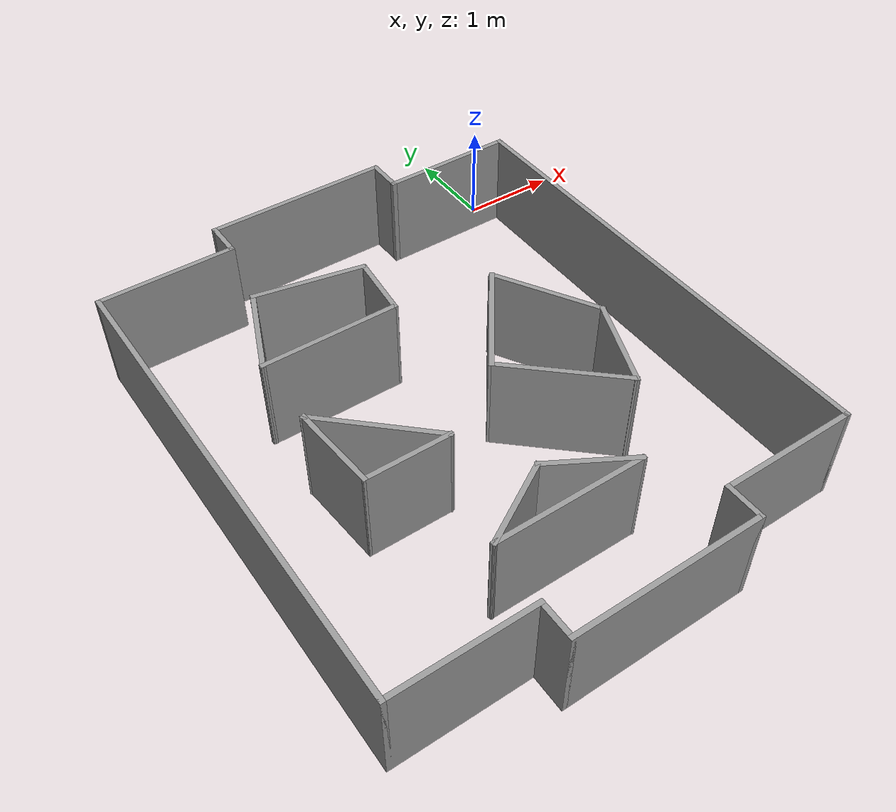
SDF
<?xml version='1.0'?>
<sdf version='1.6'>
  <model name='rgarena2-4'>
    <pose frame=''>-2.116 -2.655 0 0 -0 0</pose>
    <link name='Wall_0'>
      <collision name='Wall_0_Collision'>
        <geometry>
          <box>
            <size>4.9 0.05 1</size>
          </box>
        </geometry>
        <pose frame=''>0 0 0.5 0 -0 0</pose>
      </collision>
      <visual name='Wall_0_Visual'>
        <pose frame=''>0 0 0.5 0 -0 0</pose>
        <geometry>
          <box>
            <size>4.9 0.05 1</size>
          </box>
        </geometry>
        <material>
          <script>
            <uri>file://media/materials/scripts/gazebo.material</uri>
            <name>Gazebo/Grey</name>
          </script>
          <ambient>1 1 1 1</ambient>
        </material>
        <meta>
          <layer>0</layer>
        </meta>
      </visual>
      <pose frame=''>-2.275 -0 0 0 -0 -1.5708</pose>
    </link>
    <link name='Wall_1'>
      <collision name='Wall_1_Collision'>
        <geometry>
          <box>
            <size>1.4 0.05 1</size>
          </box>
        </geometry>
        <pose frame=''>0 0 0.5 0 -0 0</pose>
      </collision>
      <visual name='Wall_1_Visual'>
        <pose frame=''>0 0 0.5 0 -0 0</pose>
        <geometry>
          <box>
            <size>1.4 0.05 1</size>
          </box>
        </geometry>
        <material>
          <script>
            <uri>file://media/materials/scripts/gazebo.material</uri>
            <name>Gazebo/Grey</name>
          </script>
          <ambient>1 1 1 1</ambient>
        </material>
        <meta>
          <layer>0</layer>
        </meta>
      </visual>
      <pose frame=''>-1.6 -2.425 0 0 -0 0</pose>
    </link>
    <link name='Wall_13'>
      <collision name='Wall_13_Collision'>
        <geometry>
          <box>
            <size>1.9 0.05 1</size>
          </box>
        </geometry>
        <pose frame=''>0 0 0.5 0 -0 0</pose>
      </collision>
      <visual name='Wall_13_Visual'>
        <pose frame=''>0 0 0.5 0 -0 0</pose>
        <geometry>
          <box>
            <size>1.9 0.05 1</size>
          </box>
        </geometry>
        <material>
          <script>
            <uri>file://media/materials/scripts/gazebo.material</uri>
            <name>Gazebo/Grey</name>
          </script>
          <ambient>1 1 1 1</ambient>
        </material>
        <meta>
          <layer>0</layer>
        </meta>
      </visual>
      <pose frame=''>-0 2.775 0 0 -0 3.14159</pose>
    </link>
    <link name='Wall_14'>
      <collision name='Wall_14_Collision'>
        <geometry>
          <box>
            <size>0.4 0.05 1</size>
          </box>
        </geometry>
        <pose frame=''>0 0 0.5 0 -0 0</pose>
      </collision>
      <visual name='Wall_14_Visual'>
        <pose frame=''>0 0 0.5 0 -0 0</pose>
        <geometry>
          <box>
            <size>0.4 0.05 1</size>
          </box>
        </geometry>
        <material>
          <script>
            <uri>file://media/materials/scripts/gazebo.material</uri>
            <name>Gazebo/Grey</name>
          </script>
          <ambient>1 1 1 1</ambient>
        </material>
        <meta>
          <layer>0</layer>
        </meta>
      </visual>
      <pose frame=''>-0.925 2.6 0 0 -0 -1.5708</pose>
    </link>
    <link name='Wall_15'>
      <collision name='Wall_15_Collision'>
        <geometry>
          <box>
            <size>1.4 0.05 1</size>
          </box>
        </geometry>
        <pose frame=''>0 0 0.5 0 -0 0</pose>
      </collision>
      <visual name='Wall_15_Visual'>
        <pose frame=''>0 0 0.5 0 -0 0</pose>
        <geometry>
          <box>
            <size>1.4 0.05 1</size>
          </box>
        </geometry>
        <material>
          <script>
            <uri>file://media/materials/scripts/gazebo.material</uri>
            <name>Gazebo/Grey</name>
          </script>
          <ambient>1 1 1 1</ambient>
        </material>
        <meta>
          <layer>0</layer>
        </meta>
      </visual>
      <pose frame=''>-1.6 2.425 0 0 -0 3.14159</pose>
    </link>
    <link name='Wall_2'>
      <collision name='Wall_2_Collision'>
        <geometry>
          <box>
            <size>0.4 0.05 1</size>
          </box>
        </geometry>
        <pose frame=''>0 0 0.5 0 -0 0</pose>
      </collision>
      <visual name='Wall_2_Visual'>
        <pose frame=''>0 0 0.5 0 -0 0</pose>
        <geometry>
          <box>
            <size>0.4 0.05 1</size>
          </box>
        </geometry>
        <material>
          <script>
            <uri>file://media/materials/scripts/gazebo.material</uri>
            <name>Gazebo/Grey</name>
          </script>
          <ambient>1 1 1 1</ambient>
        </material>
        <meta>
          <layer>0</layer>
        </meta>
      </visual>
      <pose frame=''>-0.925 -2.6 0 0 -0 -1.5708</pose>
    </link>
    <link name='Wall_3'>
      <collision name='Wall_3_Collision'>
        <geometry>
          <box>
            <size>1.9 0.05 1</size>
          </box>
        </geometry>
        <pose frame=''>0 0 0.5 0 -0 0</pose>
      </collision>
      <visual name='Wall_3_Visual'>
        <pose frame=''>0 0 0.5 0 -0 0</pose>
        <geometry>
          <box>
            <size>1.9 0.05 1</size>
          </box>
        </geometry>
        <material>
          <script>
            <uri>file://media/materials/scripts/gazebo.material</uri>
            <name>Gazebo/Grey</name>
          </script>
          <ambient>1 1 1 1</ambient>
        </material>
        <meta>
          <layer>0</layer>
        </meta>
      </visual>
      <pose frame=''>-0 -2.775 0 0 -0 0</pose>
    </link>
    <link name='Wall_4'>
      <collision name='Wall_4_Collision'>
        <geometry>
          <box>
            <size>0.4 0.05 1</size>
          </box>
        </geometry>
        <pose frame=''>0 0 0.5 0 -0 0</pose>
      </collision>
      <visual name='Wall_4_Visual'>
        <pose frame=''>0 0 0.5 0 -0 0</pose>
        <geometry>
          <box>
            <size>0.4 0.05 1</size>
          </box>
        </geometry>
        <material>
          <script>
            <uri>file://media/materials/scripts/gazebo.material</uri>
            <name>Gazebo/Grey</name>
          </script>
          <ambient>1 1 1 1</ambient>
        </material>
        <meta>
          <layer>0</layer>
        </meta>
      </visual>
      <pose frame=''>0.925 -2.6 0 0 -0 1.5708</pose>
    </link>
    <link name='Wall_48'>
      <collision name='Wall_48_Collision'>
        <geometry>
          <box>
            <size>0.90255 0.05 1</size>
          </box>
        </geometry>
        <pose frame=''>0 0 0.5 0 -0 0</pose>
      </collision>
      <visual name='Wall_48_Visual'>
        <pose frame=''>0 0 0.5 0 -0 0</pose>
        <geometry>
          <box>
            <size>0.90255 0.05 1</size>
          </box>
        </geometry>
        <material>
          <script>
            <uri>file://media/materials/scripts/gazebo.material</uri>
            <name>Gazebo/Grey</name>
          </script>
          <ambient>1 1 1 1</ambient>
        </material>
        <meta>
          <layer>0</layer>
        </meta>
      </visual>
      <pose frame=''>-1.404 -0.311 0 0 -0 -1.49331</pose>
    </link>
    <link name='Wall_49'>
      <collision name='Wall_49_Collision'>
        <geometry>
          <box>
            <size>0.874 0.05 1</size>
          </box>
        </geometry>
        <pose frame=''>0 0 0.5 0 -0 0</pose>
      </collision>
      <visual name='Wall_49_Visual'>
        <pose frame=''>0 0 0.5 0 -0 0</pose>
        <geometry>
          <box>
            <size>0.874 0.05 1</size>
          </box>
        </geometry>
        <material>
          <script>
            <uri>file://media/materials/scripts/gazebo.material</uri>
            <name>Gazebo/Grey</name>
          </script>
          <ambient>1 1 1 1</ambient>
        </material>
        <meta>
          <layer>0</layer>
        </meta>
      </visual>
      <pose frame=''>-0.959 -0.736 0 0 -0 0</pose>
    </link>
    <link name='Wall_5'>
      <collision name='Wall_5_Collision'>
        <geometry>
          <box>
            <size>1.4 0.05 1</size>
          </box>
        </geometry>
        <pose frame=''>0 0 0.5 0 -0 0</pose>
      </collision>
      <visual name='Wall_5_Visual'>
        <pose frame=''>0 0 0.5 0 -0 0</pose>
        <geometry>
          <box>
            <size>1.4 0.05 1</size>
          </box>
        </geometry>
        <material>
          <script>
            <uri>file://media/materials/scripts/gazebo.material</uri>
            <name>Gazebo/Grey</name>
          </script>
          <ambient>1 1 1 1</ambient>
        </material>
        <meta>
          <layer>0</layer>
        </meta>
      </visual>
      <pose frame=''>1.6 -2.425 0 0 -0 0</pose>
    </link>
    <link name='Wall_50'>
      <collision name='Wall_50_Collision'>
        <geometry>
          <box>
            <size>1.28082 0.05 1</size>
          </box>
        </geometry>
        <pose frame=''>0 0 0.5 0 -0 0</pose>
      </collision>
      <visual name='Wall_50_Visual'>
        <pose frame=''>0 0 0.5 0 -0 0</pose>
        <geometry>
          <box>
            <size>1.28082 0.05 1</size>
          </box>
        </geometry>
        <material>
          <script>
            <uri>file://media/materials/scripts/gazebo.material</uri>
            <name>Gazebo/Grey</name>
          </script>
          <ambient>1 1 1 1</ambient>
        </material>
        <meta>
          <layer>0</layer>
        </meta>
      </visual>
      <pose frame=''>-0.992 -0.311 0 0 -0 2.37918</pose>
    </link>
    <link name='Wall_52'>
      <collision name='Wall_52_Collision'>
        <geometry>
          <box>
            <size>1.23594 0.05 1</size>
          </box>
        </geometry>
        <pose frame=''>0 0 0.5 0 -0 0</pose>
      </collision>
      <visual name='Wall_52_Visual'>
        <pose frame=''>0 0 0.5 0 -0 0</pose>
        <geometry>
          <box>
            <size>1.23594 0.05 1</size>
          </box>
        </geometry>
        <material>
          <script>
            <uri>file://media/materials/scripts/gazebo.material</uri>
            <name>Gazebo/Grey</name>
          </script>
          <ambient>1 1 1 1</ambient>
        </material>
        <meta>
          <layer>0</layer>
        </meta>
      </visual>
      <pose frame=''>0.5545 0.2075 0 0 -0 0.936234</pose>
    </link>
    <link name='Wall_53'>
      <collision name='Wall_53_Collision'>
        <geometry>
          <box>
            <size>1.14996 0.05 1</size>
          </box>
        </geometry>
        <pose frame=''>0 0 0.5 0 -0 0</pose>
      </collision>
      <visual name='Wall_53_Visual'>
        <pose frame=''>0 0 0.5 0 -0 0</pose>
        <geometry>
          <box>
            <size>1.14996 0.05 1</size>
          </box>
        </geometry>
        <material>
          <script>
            <uri>file://media/materials/scripts/gazebo.material</uri>
            <name>Gazebo/Grey</name>
          </script>
          <ambient>1 1 1 1</ambient>
        </material>
        <meta>
          <layer>0</layer>
        </meta>
      </visual>
      <pose frame=''>1.181 0.2085 0 0 -0 -1.04737</pose>
    </link>
    <link name='Wall_54'>
      <collision name='Wall_54_Collision'>
        <geometry>
          <box>
            <size>0.967226 0.05 1</size>
          </box>
        </geometry>
        <pose frame=''>0 0 0.5 0 -0 0</pose>
      </collision>
      <visual name='Wall_54_Visual'>
        <pose frame=''>0 0 0.5 0 -0 0</pose>
        <geometry>
          <box>
            <size>0.967226 0.05 1</size>
          </box>
        </geometry>
        <material>
          <script>
            <uri>file://media/materials/scripts/gazebo.material</uri>
            <name>Gazebo/Grey</name>
          </script>
          <ambient>1 1 1 1</ambient>
        </material>
        <meta>
          <layer>0</layer>
        </meta>
      </visual>
      <pose frame=''>1.288 -0.6945 0 0 -0 -1.94604</pose>
    </link>
    <link name='Wall_55'>
      <collision name='Wall_55_Collision'>
        <geometry>
          <box>
            <size>1.30104 0.05 1</size>
          </box>
        </geometry>
        <pose frame=''>0 0 0.5 0 -0 0</pose>
      </collision>
      <visual name='Wall_55_Visual'>
        <pose frame=''>0 0 0.5 0 -0 0</pose>
        <geometry>
          <box>
            <size>1.30104 0.05 1</size>
          </box>
        </geometry>
        <material>
          <script>
            <uri>file://media/materials/scripts/gazebo.material</uri>
            <name>Gazebo/Grey</name>
          </script>
          <ambient>1 1 1 1</ambient>
        </material>
        <meta>
          <layer>0</layer>
        </meta>
      </visual>
      <pose frame=''>0.6615 -0.6955 0 0 -0 2.39351</pose>
    </link>
    <link name='Wall_57'>
      <collision name='Wall_57_Collision'>
        <geometry>
          <box>
            <size>0.970641 0.05 1</size>
          </box>
        </geometry>
        <pose frame=''>0 0 0.5 0 -0 0</pose>
      </collision>
      <visual name='Wall_57_Visual'>
        <pose frame=''>0 0 0.5 0 -0 0</pose>
        <geometry>
          <box>
            <size>0.970641 0.05 1</size>
          </box>
        </geometry>
        <material>
          <script>
            <uri>file://media/materials/scripts/gazebo.material</uri>
            <name>Gazebo/Grey</name>
          </script>
          <ambient>1 1 1 1</ambient>
        </material>
        <meta>
          <layer>0</layer>
        </meta>
      </visual>
      <pose frame=''>-1.2555 1.2625 0 0 -0 -1.96199</pose>
    </link>
    <link name='Wall_58'>
      <collision name='Wall_58_Collision'>
        <geometry>
          <box>
            <size>1.40008 0.05 1</size>
          </box>
        </geometry>
        <pose frame=''>0 0 0.5 0 -0 0</pose>
      </collision>
      <visual name='Wall_58_Visual'>
        <pose frame=''>0 0 0.5 0 -0 0</pose>
        <geometry>
          <box>
            <size>1.40008 0.05 1</size>
          </box>
        </geometry>
        <material>
          <script>
            <uri>file://media/materials/scripts/gazebo.material</uri>
            <name>Gazebo/Grey</name>
          </script>
          <ambient>1 1 1 1</ambient>
        </material>
        <meta>
          <layer>0</layer>
        </meta>
      </visual>
      <pose frame=''>-0.756 0.837 0 0 -0 0</pose>
    </link>
    <link name='Wall_59'>
      <collision name='Wall_59_Collision'>
        <geometry>
          <box>
            <size>0.691405 0.05 1</size>
          </box>
        </geometry>
        <pose frame=''>0 0 0.5 0 -0 0</pose>
      </collision>
      <visual name='Wall_59_Visual'>
        <pose frame=''>0 0 0.5 0 -0 0</pose>
        <geometry>
          <box>
            <size>0.691405 0.05 1</size>
          </box>
        </geometry>
        <material>
          <script>
            <uri>file://media/materials/scripts/gazebo.material</uri>
            <name>Gazebo/Grey</name>
          </script>
          <ambient>1 1 1 1</ambient>
        </material>
        <meta>
          <layer>0</layer>
        </meta>
      </visual>
      <pose frame=''>-0.048 1.156 0 0 -0 1.46772</pose>
    </link>
    <link name='Wall_6'>
      <collision name='Wall_6_Collision'>
        <geometry>
          <box>
            <size>4.9 0.05 1</size>
          </box>
        </geometry>
        <pose frame=''>0 0 0.5 0 -0 0</pose>
      </collision>
      <visual name='Wall_6_Visual'>
        <pose frame=''>0 0 0.5 0 -0 0</pose>
        <geometry>
          <box>
            <size>4.9 0.05 1</size>
          </box>
        </geometry>
        <material>
          <script>
            <uri>file://media/materials/scripts/gazebo.material</uri>
            <name>Gazebo/Grey</name>
          </script>
          <ambient>1 1 1 1</ambient>
        </material>
        <meta>
          <layer>0</layer>
        </meta>
      </visual>
      <pose frame=''>2.275 -0 0 0 -0 1.5708</pose>
    </link>
    <link name='Wall_60'>
      <collision name='Wall_60_Collision'>
        <geometry>
          <box>
            <size>1.13614 0.05 1</size>
          </box>
        </geometry>
        <pose frame=''>0 0 0.5 0 -0 0</pose>
      </collision>
      <visual name='Wall_60_Visual'>
        <pose frame=''>0 0 0.5 0 -0 0</pose>
        <geometry>
          <box>
            <size>1.13614 0.05 1</size>
          </box>
        </geometry>
        <material>
          <script>
            <uri>file://media/materials/scripts/gazebo.material</uri>
            <name>Gazebo/Grey</name>
          </script>
          <ambient>1 1 1 1</ambient>
        </material>
        <meta>
          <layer>0</layer>
        </meta>
      </visual>
      <pose frame=''>-0.5475 1.5815 0 0 -0 2.9442</pose>
    </link>
    <link name='Wall_62'>
      <collision name='Wall_62_Collision'>
        <geometry>
          <box>
            <size>0.900128 0.05 1</size>
          </box>
        </geometry>
        <pose frame=''>0 0 0.5 0 -0 0</pose>
      </collision>
      <visual name='Wall_62_Visual'>
        <pose frame=''>0 0 0.5 0 -0 0</pose>
        <geometry>
          <box>
            <size>0.900128 0.05 1</size>
          </box>
        </geometry>
        <material>
          <script>
            <uri>file://media/materials/scripts/gazebo.material</uri>
            <name>Gazebo/Grey</name>
          </script>
          <ambient>1 1 1 1</ambient>
        </material>
        <meta>
          <layer>0</layer>
        </meta>
      </visual>
      <pose frame=''>-0.527 -1.6045 0 0 -0 0.52367</pose>
    </link>
    <link name='Wall_63'>
      <collision name='Wall_63_Collision'>
        <geometry>
          <box>
            <size>0.900077 0.05 1</size>
          </box>
        </geometry>
        <pose frame=''>0 0 0.5 0 -0 0</pose>
      </collision>
      <visual name='Wall_63_Visual'>
        <pose frame=''>0 0 0.5 0 -0 0</pose>
        <geometry>
          <box>
            <size>0.900077 0.05 1</size>
          </box>
        </geometry>
        <material>
          <script>
            <uri>file://media/materials/scripts/gazebo.material</uri>
            <name>Gazebo/Grey</name>
          </script>
          <ambient>1 1 1 1</ambient>
        </material>
        <meta>
          <layer>0</layer>
        </meta>
      </visual>
      <pose frame=''>0.209 -1.6045 0 0 -0 -0.52367</pose>
    </link>
    <link name='Wall_64'>
      <collision name='Wall_64_Collision'>
        <geometry>
          <box>
            <size>1.522 0.05 1</size>
          </box>
        </geometry>
        <pose frame=''>0 0 0.5 0 -0 0</pose>
      </collision>
      <visual name='Wall_64_Visual'>
        <pose frame=''>0 0 0.5 0 -0 0</pose>
        <geometry>
          <box>
            <size>1.522 0.05 1</size>
          </box>
        </geometry>
        <material>
          <script>
            <uri>file://media/materials/scripts/gazebo.material</uri>
            <name>Gazebo/Grey</name>
          </script>
          <ambient>1 1 1 1</ambient>
        </material>
        <meta>
          <layer>0</layer>
        </meta>
      </visual>
      <pose frame=''>-0.159 -1.817 0 0 -0 3.14159</pose>
    </link>
    <link name='Wall_7'>
      <collision name='Wall_7_Collision'>
        <geometry>
          <box>
            <size>1.4 0.05 1</size>
          </box>
        </geometry>
        <pose frame=''>0 0 0.5 0 -0 0</pose>
      </collision>
      <visual name='Wall_7_Visual'>
        <pose frame=''>0 0 0.5 0 -0 0</pose>
        <geometry>
          <box>
            <size>1.4 0.05 1</size>
          </box>
        </geometry>
        <material>
          <script>
            <uri>file://media/materials/scripts/gazebo.material</uri>
            <name>Gazebo/Grey</name>
          </script>
          <ambient>1 1 1 1</ambient>
        </material>
        <meta>
          <layer>0</layer>
        </meta>
      </visual>
      <pose frame=''>1.6 2.425 0 0 -0 3.14159</pose>
    </link>
    <link name='Wall_9'>
      <collision name='Wall_9_Collision'>
        <geometry>
          <box>
            <size>0.4 0.05 1</size>
          </box>
        </geometry>
        <pose frame=''>0 0 0.5 0 -0 0</pose>
      </collision>
      <visual name='Wall_9_Visual'>
        <pose frame=''>0 0 0.5 0 -0 0</pose>
        <geometry>
          <box>
            <size>0.4 0.05 1</size>
          </box>
        </geometry>
        <material>
          <script>
            <uri>file://media/materials/scripts/gazebo.material</uri>
            <name>Gazebo/Grey</name>
          </script>
          <ambient>1 1 1 1</ambient>
        </material>
        <meta>
          <layer>0</layer>
        </meta>
      </visual>
      <pose frame=''>0.925 2.6 0 0 -0 1.5708</pose>
    </link>
    <static>1</static>
  </model>
</sdf>
